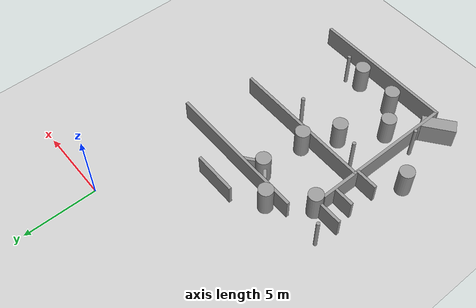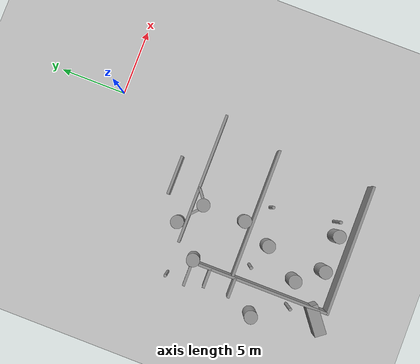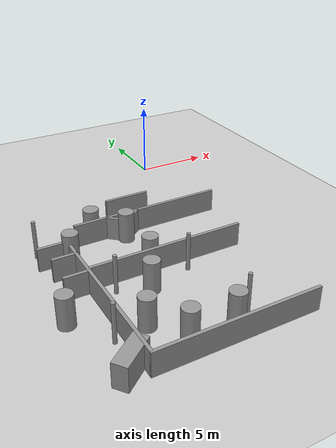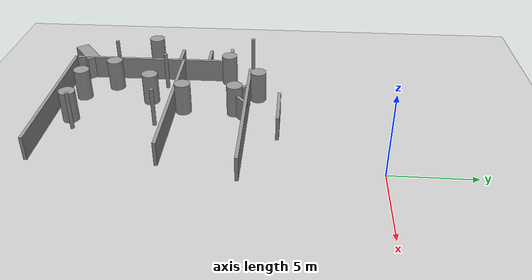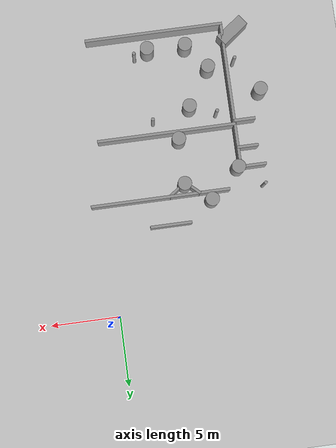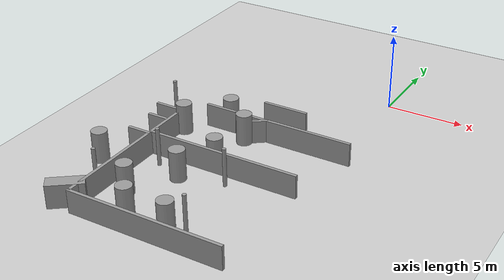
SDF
<sdf version="1.7">
 <world name="default">
  <model name="ground_plane">
   <static>1</static>
   <link name="link">
    <collision name="collision">
     <geometry><plane><normal>0 0 1</normal><size>100 100</size></plane></geometry>
     <surface><friction><ode><mu>100</mu><mu2>50</mu2></ode></friction></surface>
    </collision>
    <visual name="visual">
     <cast_shadows>0</cast_shadows>
     <geometry><plane><normal>0 0 1</normal><size>100 100</size></plane></geometry>
     <material>
      <script><uri>file://media/materials/scripts/gazebo.material</uri><name>Gazebo/Grey</name></script>
     </material>
    </visual>
   </link>
  </model>
  <model name="wall_10x3_clone_0">
   <link name="link">
    <inertial>
     <mass>1</mass>
     <inertia>
      <ixx>0.166667</ixx>
      <ixy>0</ixy>
      <ixz>0</ixz>
      <iyy>0.166667</iyy>
      <iyz>0</iyz>
      <izz>0.166667</izz>
     </inertia>
    </inertial>
    <visual name="visual">
     <geometry><box><size>10 0.2 1.5</size></box></geometry>
     <material>
      <script><name>Gazebo/Grey</name><uri>file://media/materials/scripts/gazebo.material</uri></script>
      <shader type="pixel"><normal_map>__default__</normal_map></shader>
      <ambient>0.3 0.3 0.3 1</ambient>
      <diffuse>0.7 0.7 0.7 1</diffuse>
      <specular>0.01 0.01 0.01 1</specular>
      <emissive>0 0 0 1</emissive>
     </material>
    </visual>
    <collision name="collision">
     <geometry><box><size>10 0.2 1.5</size></box></geometry>
     <surface>
      <friction>
       <ode><mu>1</mu><mu2>1</mu2><fdir1>0 0 0</fdir1><slip1>0</slip1><slip2>0</slip2></ode>
       <torsional>
        <coefficient>1</coefficient>
        <patch_radius>0</patch_radius>
        <surface_radius>0</surface_radius>
        <use_patch_radius>1</use_patch_radius>
        <ode><slip>0</slip></ode>
       </torsional>
      </friction>
      <bounce><restitution_coefficient>0</restitution_coefficient><threshold>1e+06</threshold></bounce>
      <contact>
       <collide_without_contact>0</collide_without_contact>
       <collide_without_contact_bitmask>1</collide_without_contact_bitmask>
       <collide_bitmask>1</collide_bitmask>
       <ode>
        <soft_cfm>0</soft_cfm>
        <soft_erp>0.2</soft_erp>
        <kp>1e+13</kp>
        <kd>1</kd>
        <max_vel>0.01</max_vel>
        <min_depth>0</min_depth>
       </ode>
       <bullet>
        <split_impulse>1</split_impulse>
        <split_impulse_penetration_threshold>-0.01</split_impulse_penetration_threshold>
        <soft_cfm>0</soft_cfm>
        <soft_erp>0.2</soft_erp>
        <kp>1e+13</kp>
        <kd>1</kd>
       </bullet>
      </contact>
     </surface>
    </collision>
   </link>
   <static>1</static>
   <pose>-5.04868 -12.5865 0.75 0 -0 0</pose>
  </model>
  <model name="wall_10x3_clone_2_clone">
   <link name="link">
    <inertial>
     <mass>1</mass>
     <inertia>
      <ixx>0.166667</ixx>
      <ixy>0</ixy>
      <ixz>0</ixz>
      <iyy>0.166667</iyy>
      <iyz>0</iyz>
      <izz>0.166667</izz>
     </inertia>
    </inertial>
    <visual name="visual">
     <geometry><box><size>10 0.2 1.5</size></box></geometry>
     <material>
      <script><name>Gazebo/Grey</name><uri>file://media/materials/scripts/gazebo.material</uri></script>
      <shader type="pixel"><normal_map>__default__</normal_map></shader>
      <ambient>0.3 0.3 0.3 1</ambient>
      <diffuse>0.7 0.7 0.7 1</diffuse>
      <specular>0.01 0.01 0.01 1</specular>
      <emissive>0 0 0 1</emissive>
     </material>
    </visual>
    <collision name="collision">
     <geometry><box><size>10 0.2 1.5</size></box></geometry>
     <surface>
      <friction>
       <ode><mu>1</mu><mu2>1</mu2><fdir1>0 0 0</fdir1><slip1>0</slip1><slip2>0</slip2></ode>
       <torsional>
        <coefficient>1</coefficient>
        <patch_radius>0</patch_radius>
        <surface_radius>0</surface_radius>
        <use_patch_radius>1</use_patch_radius>
        <ode><slip>0</slip></ode>
       </torsional>
      </friction>
      <bounce><restitution_coefficient>0</restitution_coefficient><threshold>1e+06</threshold></bounce>
      <contact>
       <collide_without_contact>0</collide_without_contact>
       <collide_without_contact_bitmask>1</collide_without_contact_bitmask>
       <collide_bitmask>1</collide_bitmask>
       <ode>
        <soft_cfm>0</soft_cfm>
        <soft_erp>0.2</soft_erp>
        <kp>1e+13</kp>
        <kd>1</kd>
        <max_vel>0.01</max_vel>
        <min_depth>0</min_depth>
       </ode>
       <bullet>
        <split_impulse>1</split_impulse>
        <split_impulse_penetration_threshold>-0.01</split_impulse_penetration_threshold>
        <soft_cfm>0</soft_cfm>
        <soft_erp>0.2</soft_erp>
        <kp>1e+13</kp>
        <kd>1</kd>
       </bullet>
      </contact>
     </surface>
    </collision>
   </link>
   <static>1</static>
   <pose>-4 -8 0.75 0 -0 0</pose>
  </model>
  <model name="wall_10x3_clone_3_clone_0_clone_clone_clone_clone_clone_0">
   <link name="link">
    <inertial>
     <mass>1</mass>
     <inertia>
      <ixx>0.166667</ixx>
      <ixy>0</ixy>
      <ixz>0</ixz>
      <iyy>0.166667</iyy>
      <iyz>0</iyz>
      <izz>0.166667</izz>
     </inertia>
    </inertial>
    <visual name="visual">
     <geometry><box><size>3 0.2 1.5</size></box></geometry>
     <material>
      <script><name>Gazebo/Grey</name><uri>file://media/materials/scripts/gazebo.material</uri></script>
      <shader type="pixel"><normal_map>__default__</normal_map></shader>
      <ambient>0.3 0.3 0.3 1</ambient>
      <diffuse>0.7 0.7 0.7 1</diffuse>
      <specular>0.01 0.01 0.01 1</specular>
      <emissive>0 0 0 1</emissive>
     </material>
    </visual>
    <collision name="collision">
     <geometry><box><size>3 0.2 1.5</size></box></geometry>
     <surface>
      <friction>
       <ode><mu>1</mu><mu2>1</mu2><fdir1>0 0 0</fdir1><slip1>0</slip1><slip2>0</slip2></ode>
       <torsional>
        <coefficient>1</coefficient>
        <patch_radius>0</patch_radius>
        <surface_radius>0</surface_radius>
        <use_patch_radius>1</use_patch_radius>
        <ode><slip>0</slip></ode>
       </torsional>
      </friction>
      <bounce><restitution_coefficient>0</restitution_coefficient><threshold>1e+06</threshold></bounce>
      <contact>
       <collide_without_contact>0</collide_without_contact>
       <collide_without_contact_bitmask>1</collide_without_contact_bitmask>
       <collide_bitmask>1</collide_bitmask>
       <ode>
        <soft_cfm>0</soft_cfm>
        <soft_erp>0.2</soft_erp>
        <kp>1e+13</kp>
        <kd>1</kd>
        <max_vel>0.01</max_vel>
        <min_depth>0</min_depth>
       </ode>
       <bullet>
        <split_impulse>1</split_impulse>
        <split_impulse_penetration_threshold>-0.01</split_impulse_penetration_threshold>
        <soft_cfm>0</soft_cfm>
        <soft_erp>0.2</soft_erp>
        <kp>1e+13</kp>
        <kd>1</kd>
       </bullet>
      </contact>
     </surface>
    </collision>
   </link>
   <static>1</static>
   <pose>-4.5 -6 0.75 0 -0 0</pose>
  </model>
  <model name="wall_10x3_clone_3_clone_0_clone_clone_clone_clone_clone_0_clone_clone_clone_clone_0">
   <link name="link">
    <inertial>
     <mass>0.514545</mass>
     <inertia>
      <ixx>0.0981923</ixx>
      <ixy>0</ixy>
      <ixz>0</ixz>
      <iyy>0.198649</iyy>
      <iyz>0</iyz>
      <izz>0.103887</izz>
     </inertia>
    </inertial>
    <pose>0 0 0 0 0 -2.49068</pose>
    <visual name="visual">
     <geometry><box><size>1.54363 0.2 1.5</size></box></geometry>
     <material>
      <script><name>Gazebo/Grey</name><uri>file://media/materials/scripts/gazebo.material</uri></script>
      <shader type="pixel"><normal_map>__default__</normal_map></shader>
      <ambient>0.3 0.3 0.3 1</ambient>
      <diffuse>0.7 0.7 0.7 1</diffuse>
      <specular>0.01 0.01 0.01 1</specular>
      <emissive>0 0 0 1</emissive>
     </material>
    </visual>
    <collision name="collision">
     <geometry><box><size>1.54363 0.2 1.5</size></box></geometry>
     <surface>
      <friction>
       <ode><mu>1</mu><mu2>1</mu2><fdir1>0 0 0</fdir1><slip1>0</slip1><slip2>0</slip2></ode>
       <torsional>
        <coefficient>1</coefficient>
        <patch_radius>0</patch_radius>
        <surface_radius>0</surface_radius>
        <use_patch_radius>1</use_patch_radius>
        <ode><slip>0</slip></ode>
       </torsional>
      </friction>
      <bounce><restitution_coefficient>0</restitution_coefficient><threshold>1e+06</threshold></bounce>
      <contact>
       <collide_without_contact>0</collide_without_contact>
       <collide_without_contact_bitmask>1</collide_without_contact_bitmask>
       <collide_bitmask>1</collide_bitmask>
       <ode>
        <soft_cfm>0</soft_cfm>
        <soft_erp>0.2</soft_erp>
        <kp>1e+13</kp>
        <kd>1</kd>
        <max_vel>0.01</max_vel>
        <min_depth>0</min_depth>
       </ode>
       <bullet>
        <split_impulse>1</split_impulse>
        <split_impulse_penetration_threshold>-0.01</split_impulse_penetration_threshold>
        <soft_cfm>0</soft_cfm>
        <soft_erp>0.2</soft_erp>
        <kp>1e+13</kp>
        <kd>1</kd>
       </bullet>
      </contact>
     </surface>
    </collision>
   </link>
   <static>1</static>
   <pose>-5.26522 -8.43251 0.75 0 -0 0</pose>
  </model>
  <model name="wall_10x3_clone_3_clone_0_clone_clone_clone_clone_clone_0_clone_clone_clone_1">
   <link name="link">
    <inertial>
     <mass>0.514545</mass>
     <inertia>
      <ixx>0.0981923</ixx>
      <ixy>0</ixy>
      <ixz>0</ixz>
      <iyy>0.198649</iyy>
      <iyz>0</iyz>
      <izz>0.103887</izz>
     </inertia>
    </inertial>
    <pose>0 0 0 0 0 -0.740677</pose>
    <visual name="visual">
     <geometry><box><size>1.54363 0.2 1.5</size></box></geometry>
     <material>
      <script><name>Gazebo/Grey</name><uri>file://media/materials/scripts/gazebo.material</uri></script>
      <shader type="pixel"><normal_map>__default__</normal_map></shader>
      <ambient>0.3 0.3 0.3 1</ambient>
      <diffuse>0.7 0.7 0.7 1</diffuse>
      <specular>0.01 0.01 0.01 1</specular>
      <emissive>0 0 0 1</emissive>
     </material>
    </visual>
    <collision name="collision">
     <geometry><box><size>1.54363 0.2 1.5</size></box></geometry>
     <surface>
      <friction>
       <ode><mu>1</mu><mu2>1</mu2><fdir1>0 0 0</fdir1><slip1>0</slip1><slip2>0</slip2></ode>
       <torsional>
        <coefficient>1</coefficient>
        <patch_radius>0</patch_radius>
        <surface_radius>0</surface_radius>
        <use_patch_radius>1</use_patch_radius>
        <ode><slip>0</slip></ode>
       </torsional>
      </friction>
      <bounce><restitution_coefficient>0</restitution_coefficient><threshold>1e+06</threshold></bounce>
      <contact>
       <collide_without_contact>0</collide_without_contact>
       <collide_without_contact_bitmask>1</collide_without_contact_bitmask>
       <collide_bitmask>1</collide_bitmask>
       <ode>
        <soft_cfm>0</soft_cfm>
        <soft_erp>0.2</soft_erp>
        <kp>1e+13</kp>
        <kd>1</kd>
        <max_vel>0.01</max_vel>
        <min_depth>0</min_depth>
       </ode>
       <bullet>
        <split_impulse>1</split_impulse>
        <split_impulse_penetration_threshold>-0.01</split_impulse_penetration_threshold>
        <soft_cfm>0</soft_cfm>
        <soft_erp>0.2</soft_erp>
        <kp>1e+13</kp>
        <kd>1</kd>
       </bullet>
      </contact>
     </surface>
    </collision>
   </link>
   <static>1</static>
   <pose>-6.31012 -8.48241 0.75 0 -0 0</pose>
  </model>
  <model name="unit_cylinder">
   <link name="link">
    <inertial>
     <mass>1</mass>
     <inertia><ixx>0.145833</ixx><ixy>0</ixy><ixz>0</ixz><iyy>0.145833</iyy><iyz>0</iyz><izz>0.125</izz></inertia>
    </inertial>
    <visual name="visual">
     <geometry><cylinder><radius>0.5</radius><length>2</length></cylinder></geometry>
     <material>
      <script><name>Gazebo/Grey</name><uri>file://media/materials/scripts/gazebo.material</uri></script>
      <shader type="pixel"><normal_map>__default__</normal_map></shader>
      <ambient>0.3 0.3 0.3 1</ambient>
      <diffuse>0.7 0.7 0.7 1</diffuse>
      <specular>0.01 0.01 0.01 1</specular>
      <emissive>0 0 0 1</emissive>
     </material>
    </visual>
    <collision name="collision">
     <geometry><cylinder><radius>0.5</radius><length>2</length></cylinder></geometry>
     <surface>
      <friction>
       <ode><mu>1</mu><mu2>1</mu2><fdir1>0 0 0</fdir1><slip1>0</slip1><slip2>0</slip2></ode>
       <torsional>
        <coefficient>1</coefficient>
        <patch_radius>0</patch_radius>
        <surface_radius>0</surface_radius>
        <use_patch_radius>1</use_patch_radius>
        <ode><slip>0</slip></ode>
       </torsional>
      </friction>
      <bounce><restitution_coefficient>0</restitution_coefficient><threshold>1e+06</threshold></bounce>
      <contact>
       <collide_without_contact>0</collide_without_contact>
       <collide_without_contact_bitmask>1</collide_without_contact_bitmask>
       <collide_bitmask>1</collide_bitmask>
       <ode>
        <soft_cfm>0</soft_cfm>
        <soft_erp>0.2</soft_erp>
        <kp>1e+13</kp>
        <kd>1</kd>
        <max_vel>0.01</max_vel>
        <min_depth>0</min_depth>
       </ode>
       <bullet>
        <split_impulse>1</split_impulse>
        <split_impulse_penetration_threshold>-0.01</split_impulse_penetration_threshold>
        <soft_cfm>0</soft_cfm>
        <soft_erp>0.2</soft_erp>
        <kp>1e+13</kp>
        <kd>1</kd>
       </bullet>
      </contact>
     </surface>
    </collision>
   </link>
   <static>0</static>
   <pose>-5.85038 -11.9865 0.999996 0 -0 0.000452</pose>
  </model>
  <model name="unit_cylinder_clone_8_clone">
   <link name="link">
    <inertial>
     <mass>1</mass>
     <inertia><ixx>0.145833</ixx><ixy>0</ixy><ixz>0</ixz><iyy>0.145833</iyy><iyz>0</iyz><izz>0.125</izz></inertia>
    </inertial>
    <visual name="visual">
     <geometry><cylinder><radius>0.5</radius><length>2</length></cylinder></geometry>
     <material>
      <script><name>Gazebo/Grey</name><uri>file://media/materials/scripts/gazebo.material</uri></script>
      <shader type="pixel"><normal_map>__default__</normal_map></shader>
      <ambient>0.3 0.3 0.3 1</ambient>
      <diffuse>0.7 0.7 0.7 1</diffuse>
      <specular>0.01 0.01 0.01 1</specular>
      <emissive>0 0 0 1</emissive>
     </material>
    </visual>
    <collision name="collision">
     <geometry><cylinder><radius>0.5</radius><length>2</length></cylinder></geometry>
     <surface>
      <friction>
       <ode><mu>1</mu><mu2>1</mu2><fdir1>0 0 0</fdir1><slip1>0</slip1><slip2>0</slip2></ode>
       <torsional>
        <coefficient>1</coefficient>
        <patch_radius>0</patch_radius>
        <surface_radius>0</surface_radius>
        <use_patch_radius>1</use_patch_radius>
        <ode><slip>0</slip></ode>
       </torsional>
      </friction>
      <bounce><restitution_coefficient>0</restitution_coefficient><threshold>1e+06</threshold></bounce>
      <contact>
       <collide_without_contact>0</collide_without_contact>
       <collide_without_contact_bitmask>1</collide_without_contact_bitmask>
       <collide_bitmask>1</collide_bitmask>
       <ode>
        <soft_cfm>0</soft_cfm>
        <soft_erp>0.2</soft_erp>
        <kp>1e+13</kp>
        <kd>1</kd>
        <max_vel>0.01</max_vel>
        <min_depth>0</min_depth>
       </ode>
       <bullet>
        <split_impulse>1</split_impulse>
        <split_impulse_penetration_threshold>-0.01</split_impulse_penetration_threshold>
        <soft_cfm>0</soft_cfm>
        <soft_erp>0.2</soft_erp>
        <kp>1e+13</kp>
        <kd>1</kd>
       </bullet>
      </contact>
     </surface>
    </collision>
   </link>
   <static>0</static>
   <pose>-7.63259 -7.39999 0.999994 0 0 -0.022181</pose>
  </model>
  <model name="unit_cylinder_clone_8_clone_1">
   <link name="link">
    <inertial>
     <mass>1</mass>
     <inertia><ixx>0.145833</ixx><ixy>0</ixy><ixz>0</ixz><iyy>0.145833</iyy><iyz>0</iyz><izz>0.125</izz></inertia>
    </inertial>
    <visual name="visual">
     <geometry><cylinder><radius>0.5</radius><length>2</length></cylinder></geometry>
     <material>
      <script><name>Gazebo/Grey</name><uri>file://media/materials/scripts/gazebo.material</uri></script>
      <shader type="pixel"><normal_map>__default__</normal_map></shader>
      <ambient>0.3 0.3 0.3 1</ambient>
      <diffuse>0.7 0.7 0.7 1</diffuse>
      <specular>0.01 0.01 0.01 1</specular>
      <emissive>0 0 0 1</emissive>
     </material>
    </visual>
    <collision name="collision">
     <geometry><cylinder><radius>0.5</radius><length>2</length></cylinder></geometry>
     <surface>
      <friction>
       <ode><mu>1</mu><mu2>1</mu2><fdir1>0 0 0</fdir1><slip1>0</slip1><slip2>0</slip2></ode>
       <torsional>
        <coefficient>1</coefficient>
        <patch_radius>0</patch_radius>
        <surface_radius>0</surface_radius>
        <use_patch_radius>1</use_patch_radius>
        <ode><slip>0</slip></ode>
       </torsional>
      </friction>
      <bounce><restitution_coefficient>0</restitution_coefficient><threshold>1e+06</threshold></bounce>
      <contact>
       <collide_without_contact>0</collide_without_contact>
       <collide_without_contact_bitmask>1</collide_without_contact_bitmask>
       <collide_bitmask>1</collide_bitmask>
       <ode>
        <soft_cfm>0</soft_cfm>
        <soft_erp>0.2</soft_erp>
        <kp>1e+13</kp>
        <kd>1</kd>
        <max_vel>0.01</max_vel>
        <min_depth>0</min_depth>
       </ode>
       <bullet>
        <split_impulse>1</split_impulse>
        <split_impulse_penetration_threshold>-0.01</split_impulse_penetration_threshold>
        <soft_cfm>0</soft_cfm>
        <soft_erp>0.2</soft_erp>
        <kp>1e+13</kp>
        <kd>1</kd>
       </bullet>
      </contact>
     </surface>
    </collision>
   </link>
   <static>0</static>
   <pose>-5.83457 -8.7532 0.999994 0 0 -0.022181</pose>
  </model>
  <model name="unit_cylinder_clone_8_clone_2">
   <link name="link">
    <inertial>
     <mass>1</mass>
     <inertia><ixx>0.145833</ixx><ixy>0</ixy><ixz>0</ixz><iyy>0.145833</iyy><iyz>0</iyz><izz>0.125</izz></inertia>
    </inertial>
    <visual name="visual">
     <geometry><cylinder><radius>0.5</radius><length>2</length></cylinder></geometry>
     <material>
      <script><name>Gazebo/Grey</name><uri>file://media/materials/scripts/gazebo.material</uri></script>
      <shader type="pixel"><normal_map>__default__</normal_map></shader>
      <ambient>0.3 0.3 0.3 1</ambient>
      <diffuse>0.7 0.7 0.7 1</diffuse>
      <specular>0.01 0.01 0.01 1</specular>
      <emissive>0 0 0 1</emissive>
     </material>
    </visual>
    <collision name="collision">
     <geometry><cylinder><radius>0.5</radius><length>2</length></cylinder></geometry>
     <surface>
      <friction>
       <ode><mu>1</mu><mu2>1</mu2><fdir1>0 0 0</fdir1><slip1>0</slip1><slip2>0</slip2></ode>
       <torsional>
        <coefficient>1</coefficient>
        <patch_radius>0</patch_radius>
        <surface_radius>0</surface_radius>
        <use_patch_radius>1</use_patch_radius>
        <ode><slip>0</slip></ode>
       </torsional>
      </friction>
      <bounce><restitution_coefficient>0</restitution_coefficient><threshold>1e+06</threshold></bounce>
      <contact>
       <collide_without_contact>0</collide_without_contact>
       <collide_without_contact_bitmask>1</collide_without_contact_bitmask>
       <collide_bitmask>1</collide_bitmask>
       <ode>
        <soft_cfm>0</soft_cfm>
        <soft_erp>0.2</soft_erp>
        <kp>1e+13</kp>
        <kd>1</kd>
        <max_vel>0.01</max_vel>
        <min_depth>0</min_depth>
       </ode>
       <bullet>
        <split_impulse>1</split_impulse>
        <split_impulse_penetration_threshold>-0.01</split_impulse_penetration_threshold>
        <soft_cfm>0</soft_cfm>
        <soft_erp>0.2</soft_erp>
        <kp>1e+13</kp>
        <kd>1</kd>
       </bullet>
      </contact>
     </surface>
    </collision>
   </link>
   <static>0</static>
   <pose>-9.78928 -9.45299 0.999994 0 0 -0.022186</pose>
  </model>
  <model name="wall_10x3_clone_3_clone_0_clone_0">
   <link name="link">
    <inertial>
     <mass>1</mass>
     <inertia>
      <ixx>0.166667</ixx>
      <ixy>0</ixy>
      <ixz>0</ixz>
      <iyy>0.166667</iyy>
      <iyz>0</iyz>
      <izz>0.166667</izz>
     </inertia>
    </inertial>
    <visual name="visual">
     <geometry><box><size>10 0.2 1.5</size></box></geometry>
     <material>
      <script><name>Gazebo/Grey</name><uri>file://media/materials/scripts/gazebo.material</uri></script>
      <shader type="pixel"><normal_map>__default__</normal_map></shader>
      <ambient>0.3 0.3 0.3 1</ambient>
      <diffuse>0.7 0.7 0.7 1</diffuse>
      <specular>0.01 0.01 0.01 1</specular>
      <emissive>0 0 0 1</emissive>
     </material>
    </visual>
    <collision name="collision">
     <geometry><box><size>10 0.2 1.5</size></box></geometry>
     <surface>
      <friction>
       <ode><mu>1</mu><mu2>1</mu2><fdir1>0 0 0</fdir1><slip1>0</slip1><slip2>0</slip2></ode>
       <torsional>
        <coefficient>1</coefficient>
        <patch_radius>0</patch_radius>
        <surface_radius>0</surface_radius>
        <use_patch_radius>1</use_patch_radius>
        <ode><slip>0</slip></ode>
       </torsional>
      </friction>
      <bounce><restitution_coefficient>0</restitution_coefficient><threshold>1e+06</threshold></bounce>
      <contact>
       <collide_without_contact>0</collide_without_contact>
       <collide_without_contact_bitmask>1</collide_without_contact_bitmask>
       <collide_bitmask>1</collide_bitmask>
       <ode>
        <soft_cfm>0</soft_cfm>
        <soft_erp>0.2</soft_erp>
        <kp>1e+13</kp>
        <kd>1</kd>
        <max_vel>0.01</max_vel>
        <min_depth>0</min_depth>
       </ode>
       <bullet>
        <split_impulse>1</split_impulse>
        <split_impulse_penetration_threshold>-0.01</split_impulse_penetration_threshold>
        <soft_cfm>0</soft_cfm>
        <soft_erp>0.2</soft_erp>
        <kp>1e+13</kp>
        <kd>1</kd>
       </bullet>
      </contact>
     </surface>
    </collision>
   </link>
   <static>1</static>
   <pose>-9.98898 -14.953 0.75 0 -0 1.5708</pose>
  </model>
  <model name="wall_10x3_clone_3_clone_0_clone_clone_clone_clone_clone_0_clone_clone_clone_clone_1">
   <link name="link">
    <inertial>
     <mass>0.514545</mass>
     <inertia>
      <ixx>0.0981923</ixx>
      <ixy>0</ixy>
      <ixz>0</ixz>
      <iyy>0.198649</iyy>
      <iyz>0</iyz>
      <izz>0.103887</izz>
     </inertia>
    </inertial>
    <pose>0 0 0 0 0 -2.49068</pose>
    <visual name="visual">
     <geometry><box><size>2.22304 0.878458 1.5</size></box></geometry>
     <material>
      <script><name>Gazebo/Grey</name><uri>file://media/materials/scripts/gazebo.material</uri></script>
      <shader type="pixel"><normal_map>__default__</normal_map></shader>
      <ambient>0.3 0.3 0.3 1</ambient>
      <diffuse>0.7 0.7 0.7 1</diffuse>
      <specular>0.01 0.01 0.01 1</specular>
      <emissive>0 0 0 1</emissive>
     </material>
    </visual>
    <collision name="collision">
     <geometry><box><size>2.22304 0.878458 1.5</size></box></geometry>
     <surface>
      <friction>
       <ode><mu>1</mu><mu2>1</mu2><fdir1>0 0 0</fdir1><slip1>0</slip1><slip2>0</slip2></ode>
       <torsional>
        <coefficient>1</coefficient>
        <patch_radius>0</patch_radius>
        <surface_radius>0</surface_radius>
        <use_patch_radius>1</use_patch_radius>
        <ode><slip>0</slip></ode>
       </torsional>
      </friction>
      <bounce><restitution_coefficient>0</restitution_coefficient><threshold>1e+06</threshold></bounce>
      <contact>
       <collide_without_contact>0</collide_without_contact>
       <collide_without_contact_bitmask>1</collide_without_contact_bitmask>
       <collide_bitmask>1</collide_bitmask>
       <ode>
        <soft_cfm>0</soft_cfm>
        <soft_erp>0.2</soft_erp>
        <kp>1e+13</kp>
        <kd>1</kd>
        <max_vel>0.01</max_vel>
        <min_depth>0</min_depth>
       </ode>
       <bullet>
        <split_impulse>1</split_impulse>
        <split_impulse_penetration_threshold>-0.01</split_impulse_penetration_threshold>
        <soft_cfm>0</soft_cfm>
        <soft_erp>0.2</soft_erp>
        <kp>1e+13</kp>
        <kd>1</kd>
       </bullet>
      </contact>
     </surface>
    </collision>
   </link>
   <static>1</static>
   <pose>-10.7416 -19.3947 0.75 0 -0 0</pose>
  </model>
  <model name="unit_cylinder_clone_18">
   <link name="link">
    <inertial>
     <mass>1</mass>
     <inertia><ixx>0.145833</ixx><ixy>0</ixy><ixz>0</ixz><iyy>0.145833</iyy><iyz>0</iyz><izz>0.125</izz></inertia>
    </inertial>
    <visual name="visual">
     <geometry><cylinder><radius>0.5</radius><length>2</length></cylinder></geometry>
     <material>
      <script><name>Gazebo/Grey</name><uri>file://media/materials/scripts/gazebo.material</uri></script>
      <shader type="pixel"><normal_map>__default__</normal_map></shader>
      <ambient>0.3 0.3 0.3 1</ambient>
      <diffuse>0.7 0.7 0.7 1</diffuse>
      <specular>0.01 0.01 0.01 1</specular>
      <emissive>0 0 0 1</emissive>
     </material>
    </visual>
    <collision name="collision">
     <geometry><cylinder><radius>0.5</radius><length>2</length></cylinder></geometry>
     <surface>
      <friction>
       <ode><mu>1</mu><mu2>1</mu2><fdir1>0 0 0</fdir1><slip1>0</slip1><slip2>0</slip2></ode>
       <torsional>
        <coefficient>1</coefficient>
        <patch_radius>0</patch_radius>
        <surface_radius>0</surface_radius>
        <use_patch_radius>1</use_patch_radius>
        <ode><slip>0</slip></ode>
       </torsional>
      </friction>
      <bounce><restitution_coefficient>0</restitution_coefficient><threshold>1e+06</threshold></bounce>
      <contact>
       <collide_without_contact>0</collide_without_contact>
       <collide_without_contact_bitmask>1</collide_without_contact_bitmask>
       <collide_bitmask>1</collide_bitmask>
       <ode>
        <soft_cfm>0</soft_cfm>
        <soft_erp>0.2</soft_erp>
        <kp>1e+13</kp>
        <kd>1</kd>
        <max_vel>0.01</max_vel>
        <min_depth>0</min_depth>
       </ode>
       <bullet>
        <split_impulse>1</split_impulse>
        <split_impulse_penetration_threshold>-0.01</split_impulse_penetration_threshold>
        <soft_cfm>0</soft_cfm>
        <soft_erp>0.2</soft_erp>
        <kp>1e+13</kp>
        <kd>1</kd>
       </bullet>
      </contact>
     </surface>
    </collision>
   </link>
   <static>0</static>
   <pose>-12.116 -14.7907 0.999997 0 -0 0.000541</pose>
  </model>
  <model name="wall_10x3_clone_0_clone_0">
   <link name="link">
    <inertial>
     <mass>1</mass>
     <inertia>
      <ixx>0.166667</ixx>
      <ixy>0</ixy>
      <ixz>0</ixz>
      <iyy>0.166667</iyy>
      <iyz>0</iyz>
      <izz>0.166667</izz>
     </inertia>
    </inertial>
    <visual name="visual">
     <geometry><box><size>10 0.2 1.5</size></box></geometry>
     <material>
      <script><name>Gazebo/Grey</name><uri>file://media/materials/scripts/gazebo.material</uri></script>
      <shader type="pixel"><normal_map>__default__</normal_map></shader>
      <ambient>0.3 0.3 0.3 1</ambient>
      <diffuse>0.7 0.7 0.7 1</diffuse>
      <specular>0.01 0.01 0.01 1</specular>
      <emissive>0 0 0 1</emissive>
     </material>
    </visual>
    <collision name="collision">
     <geometry><box><size>10 0.2 1.5</size></box></geometry>
     <surface>
      <friction>
       <ode><mu>1</mu><mu2>1</mu2><fdir1>0 0 0</fdir1><slip1>0</slip1><slip2>0</slip2></ode>
       <torsional>
        <coefficient>1</coefficient>
        <patch_radius>0</patch_radius>
        <surface_radius>0</surface_radius>
        <use_patch_radius>1</use_patch_radius>
        <ode><slip>0</slip></ode>
       </torsional>
      </friction>
      <bounce><restitution_coefficient>0</restitution_coefficient><threshold>1e+06</threshold></bounce>
      <contact>
       <collide_without_contact>0</collide_without_contact>
       <collide_without_contact_bitmask>1</collide_without_contact_bitmask>
       <collide_bitmask>1</collide_bitmask>
       <ode>
        <soft_cfm>0</soft_cfm>
        <soft_erp>0.2</soft_erp>
        <kp>1e+13</kp>
        <kd>1</kd>
        <max_vel>0.01</max_vel>
        <min_depth>0</min_depth>
       </ode>
       <bullet>
        <split_impulse>1</split_impulse>
        <split_impulse_penetration_threshold>-0.01</split_impulse_penetration_threshold>
        <soft_cfm>0</soft_cfm>
        <soft_erp>0.2</soft_erp>
        <kp>1e+13</kp>
        <kd>1</kd>
       </bullet>
      </contact>
     </surface>
    </collision>
   </link>
   <static>1</static>
   <pose>-5.0812 -19.9781 0.75 0 -0 0</pose>
  </model>
  <model name="unit_cylinder_clone_8_clone_3_clone">
   <link name="link">
    <inertial>
     <mass>1</mass>
     <inertia><ixx>0.145833</ixx><ixy>0</ixy><ixz>0</ixz><iyy>0.145833</iyy><iyz>0</iyz><izz>0.125</izz></inertia>
    </inertial>
    <visual name="visual">
     <geometry><cylinder><radius>0.5</radius><length>2</length></cylinder></geometry>
     <material>
      <script><name>Gazebo/Grey</name><uri>file://media/materials/scripts/gazebo.material</uri></script>
      <shader type="pixel"><normal_map>__default__</normal_map></shader>
      <ambient>0.3 0.3 0.3 1</ambient>
      <diffuse>0.7 0.7 0.7 1</diffuse>
      <specular>0.01 0.01 0.01 1</specular>
      <emissive>0 0 0 1</emissive>
     </material>
    </visual>
    <collision name="collision">
     <geometry><cylinder><radius>0.5</radius><length>2</length></cylinder></geometry>
     <surface>
      <friction>
       <ode><mu>1</mu><mu2>1</mu2><fdir1>0 0 0</fdir1><slip1>0</slip1><slip2>0</slip2></ode>
       <torsional>
        <coefficient>1</coefficient>
        <patch_radius>0</patch_radius>
        <surface_radius>0</surface_radius>
        <use_patch_radius>1</use_patch_radius>
        <ode><slip>0</slip></ode>
       </torsional>
      </friction>
      <bounce><restitution_coefficient>0</restitution_coefficient><threshold>1e+06</threshold></bounce>
      <contact>
       <collide_without_contact>0</collide_without_contact>
       <collide_without_contact_bitmask>1</collide_without_contact_bitmask>
       <collide_bitmask>1</collide_bitmask>
       <ode>
        <soft_cfm>0</soft_cfm>
        <soft_erp>0.2</soft_erp>
        <kp>1e+13</kp>
        <kd>1</kd>
        <max_vel>0.01</max_vel>
        <min_depth>0</min_depth>
       </ode>
       <bullet>
        <split_impulse>1</split_impulse>
        <split_impulse_penetration_threshold>-0.01</split_impulse_penetration_threshold>
        <soft_cfm>0</soft_cfm>
        <soft_erp>0.2</soft_erp>
        <kp>1e+13</kp>
        <kd>1</kd>
       </bullet>
      </contact>
     </surface>
    </collision>
   </link>
   <static>0</static>
   <pose>-6.92783 -14.2317 0.999997 0 -0 -0.022186</pose>
  </model>
  <model name="unit_cylinder_clone_8_clone_3_clone_0">
   <link name="link">
    <inertial>
     <mass>1</mass>
     <inertia><ixx>0.145833</ixx><ixy>0</ixy><ixz>0</ixz><iyy>0.145833</iyy><iyz>0</iyz><izz>0.125</izz></inertia>
    </inertial>
    <visual name="visual">
     <geometry><cylinder><radius>0.5</radius><length>2</length></cylinder></geometry>
     <material>
      <script><name>Gazebo/Grey</name><uri>file://media/materials/scripts/gazebo.material</uri></script>
      <shader type="pixel"><normal_map>__default__</normal_map></shader>
      <ambient>0.3 0.3 0.3 1</ambient>
      <diffuse>0.7 0.7 0.7 1</diffuse>
      <specular>0.01 0.01 0.01 1</specular>
      <emissive>0 0 0 1</emissive>
     </material>
    </visual>
    <collision name="collision">
     <geometry><cylinder><radius>0.5</radius><length>2</length></cylinder></geometry>
     <surface>
      <friction>
       <ode><mu>1</mu><mu2>1</mu2><fdir1>0 0 0</fdir1><slip1>0</slip1><slip2>0</slip2></ode>
       <torsional>
        <coefficient>1</coefficient>
        <patch_radius>0</patch_radius>
        <surface_radius>0</surface_radius>
        <use_patch_radius>1</use_patch_radius>
        <ode><slip>0</slip></ode>
       </torsional>
      </friction>
      <bounce><restitution_coefficient>0</restitution_coefficient><threshold>1e+06</threshold></bounce>
      <contact>
       <collide_without_contact>0</collide_without_contact>
       <collide_without_contact_bitmask>1</collide_without_contact_bitmask>
       <collide_bitmask>1</collide_bitmask>
       <ode>
        <soft_cfm>0</soft_cfm>
        <soft_erp>0.2</soft_erp>
        <kp>1e+13</kp>
        <kd>1</kd>
        <max_vel>0.01</max_vel>
        <min_depth>0</min_depth>
       </ode>
       <bullet>
        <split_impulse>1</split_impulse>
        <split_impulse_penetration_threshold>-0.01</split_impulse_penetration_threshold>
        <soft_cfm>0</soft_cfm>
        <soft_erp>0.2</soft_erp>
        <kp>1e+13</kp>
        <kd>1</kd>
       </bullet>
      </contact>
     </surface>
    </collision>
   </link>
   <static>0</static>
   <pose>-7.19676 -18.6972 0.999996 0 -0 -0.022183</pose>
  </model>
  <model name="unit_cylinder_clone_8_clone_3_clone_2">
   <link name="link">
    <inertial>
     <mass>1</mass>
     <inertia><ixx>0.145833</ixx><ixy>0</ixy><ixz>0</ixz><iyy>0.145833</iyy><iyz>0</iyz><izz>0.125</izz></inertia>
    </inertial>
    <visual name="visual">
     <geometry><cylinder><radius>0.5</radius><length>2</length></cylinder></geometry>
     <material>
      <script><name>Gazebo/Grey</name><uri>file://media/materials/scripts/gazebo.material</uri></script>
      <shader type="pixel"><normal_map>__default__</normal_map></shader>
      <ambient>0.3 0.3 0.3 1</ambient>
      <diffuse>0.7 0.7 0.7 1</diffuse>
      <specular>0.01 0.01 0.01 1</specular>
      <emissive>0 0 0 1</emissive>
     </material>
    </visual>
    <collision name="collision">
     <geometry><cylinder><radius>0.5</radius><length>2</length></cylinder></geometry>
     <surface>
      <friction>
       <ode><mu>1</mu><mu2>1</mu2><fdir1>0 0 0</fdir1><slip1>0</slip1><slip2>0</slip2></ode>
       <torsional>
        <coefficient>1</coefficient>
        <patch_radius>0</patch_radius>
        <surface_radius>0</surface_radius>
        <use_patch_radius>1</use_patch_radius>
        <ode><slip>0</slip></ode>
       </torsional>
      </friction>
      <bounce><restitution_coefficient>0</restitution_coefficient><threshold>1e+06</threshold></bounce>
      <contact>
       <collide_without_contact>0</collide_without_contact>
       <collide_without_contact_bitmask>1</collide_without_contact_bitmask>
       <collide_bitmask>1</collide_bitmask>
       <ode>
        <soft_cfm>0</soft_cfm>
        <soft_erp>0.2</soft_erp>
        <kp>1e+13</kp>
        <kd>1</kd>
        <max_vel>0.01</max_vel>
        <min_depth>0</min_depth>
       </ode>
       <bullet>
        <split_impulse>1</split_impulse>
        <split_impulse_penetration_threshold>-0.01</split_impulse_penetration_threshold>
        <soft_cfm>0</soft_cfm>
        <soft_erp>0.2</soft_erp>
        <kp>1e+13</kp>
        <kd>1</kd>
       </bullet>
      </contact>
     </surface>
    </collision>
   </link>
   <static>0</static>
   <pose>-4.45561 -18.7552 0.999993 0 0 -0.022184</pose>
  </model>
  <model name="unit_cylinder_clone_8_clone_3_clone_8">
   <link name="link">
    <inertial>
     <mass>1</mass>
     <inertia><ixx>0.145833</ixx><ixy>0</ixy><ixz>0</ixz><iyy>0.145833</iyy><iyz>0</iyz><izz>0.125</izz></inertia>
    </inertial>
    <visual name="visual">
     <geometry><cylinder><radius>0.5</radius><length>2</length></cylinder></geometry>
     <material>
      <script><name>Gazebo/Grey</name><uri>file://media/materials/scripts/gazebo.material</uri></script>
      <shader type="pixel"><normal_map>__default__</normal_map></shader>
      <ambient>0.3 0.3 0.3 1</ambient>
      <diffuse>0.7 0.7 0.7 1</diffuse>
      <specular>0.01 0.01 0.01 1</specular>
      <emissive>0 0 0 1</emissive>
     </material>
    </visual>
    <collision name="collision">
     <geometry><cylinder><radius>0.5</radius><length>2</length></cylinder></geometry>
     <surface>
      <friction>
       <ode><mu>1</mu><mu2>1</mu2><fdir1>0 0 0</fdir1><slip1>0</slip1><slip2>0</slip2></ode>
       <torsional>
        <coefficient>1</coefficient>
        <patch_radius>0</patch_radius>
        <surface_radius>0</surface_radius>
        <use_patch_radius>1</use_patch_radius>
        <ode><slip>0</slip></ode>
       </torsional>
      </friction>
      <bounce><restitution_coefficient>0</restitution_coefficient><threshold>1e+06</threshold></bounce>
      <contact>
       <collide_without_contact>0</collide_without_contact>
       <collide_without_contact_bitmask>1</collide_without_contact_bitmask>
       <collide_bitmask>1</collide_bitmask>
       <ode>
        <soft_cfm>0</soft_cfm>
        <soft_erp>0.2</soft_erp>
        <kp>1e+13</kp>
        <kd>1</kd>
        <max_vel>0.01</max_vel>
        <min_depth>0</min_depth>
       </ode>
       <bullet>
        <split_impulse>1</split_impulse>
        <split_impulse_penetration_threshold>-0.01</split_impulse_penetration_threshold>
        <soft_cfm>0</soft_cfm>
        <soft_erp>0.2</soft_erp>
        <kp>1e+13</kp>
        <kd>1</kd>
       </bullet>
      </contact>
     </surface>
    </collision>
   </link>
   <static>0</static>
   <pose>-8.61275 -16.9008 0.999997 0 -0 -0.022186</pose>
  </model>
  <model name="wall_10x3_clone_3_clone_0_clone_clone_clone_clone_clone_0_clone_clone_9_clone_2">
   <link name="link">
    <inertial>
     <mass>0.514545</mass>
     <inertia>
      <ixx>0.0981923</ixx>
      <ixy>0</ixy>
      <ixz>0</ixz>
      <iyy>0.198649</iyy>
      <iyz>0</iyz>
      <izz>0.103887</izz>
     </inertia>
    </inertial>
    <visual name="visual">
     <geometry><box><size>1.54363 0.2 1.5</size></box></geometry>
     <material>
      <script><name>Gazebo/Grey</name><uri>file://media/materials/scripts/gazebo.material</uri></script>
      <shader type="pixel"><normal_map>__default__</normal_map></shader>
      <ambient>0.3 0.3 0.3 1</ambient>
      <diffuse>0.7 0.7 0.7 1</diffuse>
      <specular>0.01 0.01 0.01 1</specular>
      <emissive>0 0 0 1</emissive>
     </material>
    </visual>
    <collision name="collision">
     <geometry><box><size>1.54363 0.2 1.5</size></box></geometry>
     <surface>
      <friction>
       <ode><mu>1</mu><mu2>1</mu2><fdir1>0 0 0</fdir1><slip1>0</slip1><slip2>0</slip2></ode>
       <torsional>
        <coefficient>1</coefficient>
        <patch_radius>0</patch_radius>
        <surface_radius>0</surface_radius>
        <use_patch_radius>1</use_patch_radius>
        <ode><slip>0</slip></ode>
       </torsional>
      </friction>
      <bounce><restitution_coefficient>0</restitution_coefficient><threshold>1e+06</threshold></bounce>
      <contact>
       <collide_without_contact>0</collide_without_contact>
       <collide_without_contact_bitmask>1</collide_without_contact_bitmask>
       <collide_bitmask>1</collide_bitmask>
       <ode>
        <soft_cfm>0</soft_cfm>
        <soft_erp>0.2</soft_erp>
        <kp>1e+13</kp>
        <kd>1</kd>
        <max_vel>0.01</max_vel>
        <min_depth>0</min_depth>
       </ode>
       <bullet>
        <split_impulse>1</split_impulse>
        <split_impulse_penetration_threshold>-0.01</split_impulse_penetration_threshold>
        <soft_cfm>0</soft_cfm>
        <soft_erp>0.2</soft_erp>
        <kp>1e+13</kp>
        <kd>1</kd>
       </bullet>
      </contact>
     </surface>
    </collision>
   </link>
   <static>1</static>
   <pose>-10.6766 -10.8722 0.75 0 -0 0</pose>
  </model>
  <model name="wall_10x3_clone_3_clone_0_clone_clone_clone_clone_clone_0_clone_clone_9_clone_3">
   <link name="link">
    <inertial>
     <mass>0.514545</mass>
     <inertia>
      <ixx>0.0981923</ixx>
      <ixy>0</ixy>
      <ixz>0</ixz>
      <iyy>0.198649</iyy>
      <iyz>0</iyz>
      <izz>0.103887</izz>
     </inertia>
    </inertial>
    <visual name="visual">
     <geometry><box><size>1.54363 0.2 1.5</size></box></geometry>
     <material>
      <script><name>Gazebo/Grey</name><uri>file://media/materials/scripts/gazebo.material</uri></script>
      <shader type="pixel"><normal_map>__default__</normal_map></shader>
      <ambient>0.3 0.3 0.3 1</ambient>
      <diffuse>0.7 0.7 0.7 1</diffuse>
      <specular>0.01 0.01 0.01 1</specular>
      <emissive>0 0 0 1</emissive>
     </material>
    </visual>
    <collision name="collision">
     <geometry><box><size>1.54363 0.2 1.5</size></box></geometry>
     <surface>
      <friction>
       <ode><mu>1</mu><mu2>1</mu2><fdir1>0 0 0</fdir1><slip1>0</slip1><slip2>0</slip2></ode>
       <torsional>
        <coefficient>1</coefficient>
        <patch_radius>0</patch_radius>
        <surface_radius>0</surface_radius>
        <use_patch_radius>1</use_patch_radius>
        <ode><slip>0</slip></ode>
       </torsional>
      </friction>
      <bounce><restitution_coefficient>0</restitution_coefficient><threshold>1e+06</threshold></bounce>
      <contact>
       <collide_without_contact>0</collide_without_contact>
       <collide_without_contact_bitmask>1</collide_without_contact_bitmask>
       <collide_bitmask>1</collide_bitmask>
       <ode>
        <soft_cfm>0</soft_cfm>
        <soft_erp>0.2</soft_erp>
        <kp>1e+13</kp>
        <kd>1</kd>
        <max_vel>0.01</max_vel>
        <min_depth>0</min_depth>
       </ode>
       <bullet>
        <split_impulse>1</split_impulse>
        <split_impulse_penetration_threshold>-0.01</split_impulse_penetration_threshold>
        <soft_cfm>0</soft_cfm>
        <soft_erp>0.2</soft_erp>
        <kp>1e+13</kp>
        <kd>1</kd>
       </bullet>
      </contact>
     </surface>
    </collision>
   </link>
   <static>1</static>
   <pose>-10.7208 -12.8126 0.75 0 -0 0</pose>
  </model>
  <model name="wall_10x3_clone_3_clone_0_clone_clone_clone_clone_clone_0_clone_clone_9_clone_4">
   <link name="link">
    <inertial>
     <mass>0.514545</mass>
     <inertia>
      <ixx>0.0981923</ixx>
      <ixy>0</ixy>
      <ixz>0</ixz>
      <iyy>0.198649</iyy>
      <iyz>0</iyz>
      <izz>0.103887</izz>
     </inertia>
    </inertial>
    <visual name="visual">
     <geometry><box><size>1.54363 0.2 1.5</size></box></geometry>
     <material>
      <script><name>Gazebo/Grey</name><uri>file://media/materials/scripts/gazebo.material</uri></script>
      <shader type="pixel"><normal_map>__default__</normal_map></shader>
      <ambient>0.3 0.3 0.3 1</ambient>
      <diffuse>0.7 0.7 0.7 1</diffuse>
      <specular>0.01 0.01 0.01 1</specular>
      <emissive>0 0 0 1</emissive>
     </material>
    </visual>
    <collision name="collision">
     <geometry><box><size>1.54363 0.2 1.5</size></box></geometry>
     <surface>
      <friction>
       <ode><mu>1</mu><mu2>1</mu2><fdir1>0 0 0</fdir1><slip1>0</slip1><slip2>0</slip2></ode>
       <torsional>
        <coefficient>1</coefficient>
        <patch_radius>0</patch_radius>
        <surface_radius>0</surface_radius>
        <use_patch_radius>1</use_patch_radius>
        <ode><slip>0</slip></ode>
       </torsional>
      </friction>
      <bounce><restitution_coefficient>0</restitution_coefficient><threshold>1e+06</threshold></bounce>
      <contact>
       <collide_without_contact>0</collide_without_contact>
       <collide_without_contact_bitmask>1</collide_without_contact_bitmask>
       <collide_bitmask>1</collide_bitmask>
       <ode>
        <soft_cfm>0</soft_cfm>
        <soft_erp>0.2</soft_erp>
        <kp>1e+13</kp>
        <kd>1</kd>
        <max_vel>0.01</max_vel>
        <min_depth>0</min_depth>
       </ode>
       <bullet>
        <split_impulse>1</split_impulse>
        <split_impulse_penetration_threshold>-0.01</split_impulse_penetration_threshold>
        <soft_cfm>0</soft_cfm>
        <soft_erp>0.2</soft_erp>
        <kp>1e+13</kp>
        <kd>1</kd>
       </bullet>
      </contact>
     </surface>
    </collision>
   </link>
   <static>1</static>
   <pose>-11.0611 -9.46483 0.75 0 -0 0</pose>
  </model>
  <model name="unit_cylinder_0_clone_18">
   <pose>-3.46853 -18.3719 1.23089 0 0 -0.028222</pose>
   <link name="link">
    <inertial>
     <mass>1</mass>
     <inertia><ixx>0.145833</ixx><ixy>0</ixy><ixz>0</ixz><iyy>0.145833</iyy><iyz>0</iyz><izz>0.125</izz></inertia>
    </inertial>
    <collision name="collision">
     <geometry><cylinder><radius>0.120231</radius><length>2.46178</length></cylinder></geometry>
    </collision>
    <visual name="visual">
     <geometry><cylinder><radius>0.120231</radius><length>2.46178</length></cylinder></geometry>
     <material>
      <script><name>Gazebo/Grey</name><uri>file://media/materials/scripts/gazebo.material</uri></script>
     </material>
    </visual>
   </link>
  </model>
  <model name="unit_cylinder_0_clone_19">
   <pose>-4.18603 -13.5032 1.23089 0 0 -0.026342</pose>
   <link name="link">
    <inertial>
     <mass>1</mass>
     <inertia><ixx>0.145833</ixx><ixy>0</ixy><ixz>0</ixz><iyy>0.145833</iyy><iyz>0</iyz><izz>0.125</izz></inertia>
    </inertial>
    <collision name="collision">
     <geometry><cylinder><radius>0.120231</radius><length>2.46178</length></cylinder></geometry>
    </collision>
    <visual name="visual">
     <geometry><cylinder><radius>0.120231</radius><length>2.46178</length></cylinder></geometry>
     <material>
      <script><name>Gazebo/Grey</name><uri>file://media/materials/scripts/gazebo.material</uri></script>
     </material>
    </visual>
   </link>
  </model>
  <model name="unit_cylinder_0_clone_20">
   <pose>-8.77732 -13.5314 1.23089 0 0 -0.030388</pose>
   <link name="link">
    <inertial>
     <mass>1</mass>
     <inertia><ixx>0.145833</ixx><ixy>0</ixy><ixz>0</ixz><iyy>0.145833</iyy><iyz>0</iyz><izz>0.125</izz></inertia>
    </inertial>
    <collision name="collision">
     <geometry><cylinder><radius>0.120231</radius><length>2.46178</length></cylinder></geometry>
    </collision>
    <visual name="visual">
     <geometry><cylinder><radius>0.120231</radius><length>2.46178</length></cylinder></geometry>
     <material>
      <script><name>Gazebo/Grey</name><uri>file://media/materials/scripts/gazebo.material</uri></script>
     </material>
    </visual>
   </link>
  </model>
  <model name="unit_cylinder_0_clone_22">
   <pose>-11.4614 -7.99936 1.23089 0 0 -0.030365</pose>
   <link name="link">
    <inertial>
     <mass>1</mass>
     <inertia><ixx>0.145833</ixx><ixy>0</ixy><ixz>0</ixz><iyy>0.145833</iyy><iyz>0</iyz><izz>0.125</izz></inertia>
    </inertial>
    <collision name="collision">
     <geometry><cylinder><radius>0.120231</radius><length>2.46178</length></cylinder></geometry>
    </collision>
    <visual name="visual">
     <geometry><cylinder><radius>0.120231</radius><length>2.46178</length></cylinder></geometry>
     <material>
      <script><name>Gazebo/Grey</name><uri>file://media/materials/scripts/gazebo.material</uri></script>
     </material>
    </visual>
   </link>
  </model>
  <model name="unit_cylinder_0_clone_20_clone">
   <pose>-10.5296 -17.147 1.23089 0 0 -0.030886</pose>
   <link name="link">
    <inertial>
     <mass>1</mass>
     <inertia><ixx>0.145833</ixx><ixy>0</ixy><ixz>0</ixz><iyy>0.145833</iyy><iyz>0</iyz><izz>0.125</izz></inertia>
    </inertial>
    <collision name="collision">
     <geometry><cylinder><radius>0.120231</radius><length>2.46178</length></cylinder></geometry>
    </collision>
    <visual name="visual">
     <geometry><cylinder><radius>0.120231</radius><length>2.46178</length></cylinder></geometry>
     <material>
      <script><name>Gazebo/Grey</name><uri>file://media/materials/scripts/gazebo.material</uri></script>
     </material>
    </visual>
   </link>
  </model>
 </world>
</sdf>
